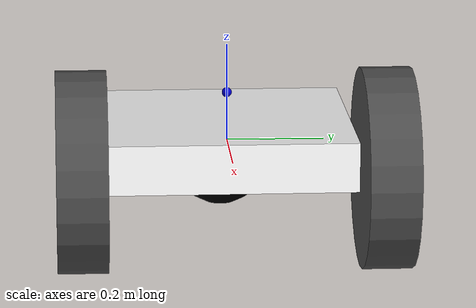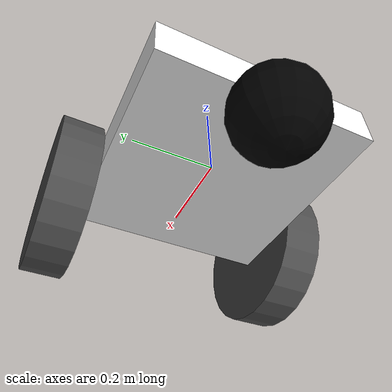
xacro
<?xml version="1.0"?>
<robot name="simple_robot_2" xmlns:xacro="http://ros.org/wiki/xacro">

<!-- Defining the colors used in this robot -->
  <material name="Black">
    <color rgba="0.0 0.0 0.0 1.0"/>
  </material>

  <material name="Red">
    <color rgba="0.8 0.0 0.0 1.0"/>
  </material>

  <material name="White">
    <color rgba="1.0 1.0 1.0 1.0"/>
  </material>

  <material name="Blue">
    <color rgba="0.0 0.0 0.8 1.0"/>
  </material>

  <!-- PROPERTY LIST -->
  <!--All units in m-kg-s-radians unit system -->
  <xacro:property name="M_PI" value="3.1415926535897931" />
  <xacro:property name="M_PI_2" value="1.570796327" />
  <xacro:property name="DEG_TO_RAD" value="0.017453293" />

  <xacro:property name="base_link_length" value="0.5" />
  <xacro:property name="base_link_width" value="0.5" />
  <xacro:property name="base_link_height" value="0.1" />
  <xacro:property name="base_link_mass" value="10" />

  <xacro:property name="wheel_radius" value="0.2" />
  <xacro:property name="wheel_thickness" value="0.1" />
  <xacro:property name="wheel_mass" value="2.5" />
  <xacro:property name="wheel_x_ratio" value="1" />

  <xacro:property name="caster_radius" value="0.1" />
  <xacro:property name="caster_mass" value="0.5" />
  <xacro:property name="caster_x_ratio" value="1" />

  <xacro:property name="laser_link_radius" value="0.01" />
  <xacro:property name="laser_link_mass" value="0.05" />
  <xacro:property name="laser_link_y" value="0.05" />

  <!-- Macro for calculating inertia of cylinder -->
  <xacro:macro name="cylinder_inertia" params="m r t">
    <inertia  ixx="${m*(3*r*r+t*t)/12}" ixy = "0" ixz = "0"
              iyy="${m*(3*r*r+t*t)/12}" iyz = "0"
              izz="${m*r*r/2}" />
  </xacro:macro>

  <xacro:macro name="cuboid_inertia" params="m l w h">
    <inertia  ixx="${m*(w*w+h*h)/12}" ixy = "0" ixz = "0"
              iyy="${m*(l*l+h*h)/12}" iyz = "0"
              izz="${m*(l*l+w*w)/12}" />
  </xacro:macro>

  <xacro:macro name="sphere_inertia" params="m r">
    <inertia  ixx="${2*m*r*r/5}" ixy = "0" ixz = "0"
              iyy="${2*m*r*r/5}" iyz = "0"
              izz="${2*m*r*r/5}" />
  </xacro:macro>

 <link name="base_link">
    <inertial>
      <mass value="${base_link_mass}"/>
      <origin xyz="0 0 0"/>
      <xacro:cuboid_inertia  m="${base_link_mass}" l="${base_link_length}" w="${base_link_width}" h="${base_link_height}" />
    </inertial>
    <visual>
      <origin rpy="0 0 0" xyz="0 0 0"/>
      <geometry>
        <box size="${base_link_length} ${base_link_width} ${base_link_height}"/>
      </geometry>
      <material name="White"/>
    </visual>
    <collision>
      <origin rpy="0 0 0 " xyz="0 0 0"/>
      <geometry>
        <box size="${base_link_length} ${base_link_width} ${base_link_height}"/>
      </geometry>
    </collision>
  </link>

  <link name="right_wheel_link">
    <visual>
      <origin rpy="1.57079632679 0  0 " xyz="0 0 0"/>
      <geometry>
        <cylinder length="${wheel_thickness}" radius="${wheel_radius}"/>
      </geometry>
      <material name="DarkGray"/>
    </visual>
    <collision>
      <origin rpy="1.57079632679 0 0 " xyz="0 0 0"/>
      <geometry>
        <cylinder length="${wheel_thickness}" radius="${wheel_radius}"/>
      </geometry>
    </collision>
    <inertial>
      <mass value="2.5"/>
      <origin xyz="0 0 0"/>
      <xacro:cylinder_inertia  m="${wheel_mass}" r="${wheel_radius}" t="${wheel_thickness}" />
    </inertial>
  </link>
  <joint name="right_wheel_joint" type="continuous">
    <parent link="base_link"/>
    <child link="right_wheel_link"/>
    <origin rpy="0 0 0" xyz="${wheel_x_ratio*base_link_length/2} ${base_link_width/2+wheel_thickness/2} 0.0"/>
    <axis rpy="0  0" xyz="0 1 0"/>
    <limit effort="100" velocity="100"/>
    <joint_properties damping="0.0" friction="0.0"/>
  </joint>

  <link name="left_wheel_link">
    <visual>
      <origin rpy="1.57079632679 0  0 " xyz="0 0 0"/>
      <geometry>
        <cylinder length="${wheel_thickness}" radius="${wheel_radius}"/>
      </geometry>
      <material name="DarkGray"/>
    </visual>
    <collision>
      <origin rpy="1.57079632679 0 0 " xyz="0 0 0"/>
      <geometry>
        <cylinder length="${wheel_thickness}" radius="${wheel_radius}"/>
      </geometry>
    </collision>
    <inertial>
      <mass value="2.5"/>
      <origin xyz="0 0 0"/>
      <xacro:cylinder_inertia  m="${wheel_mass}" r="${wheel_radius}" t="${wheel_thickness}" />
    </inertial>
  </link>
  <joint name="left_wheel_joint" type="continuous">
    <parent link="base_link"/>
    <child link="left_wheel_link"/>
    <origin rpy="0 0 0" xyz="${wheel_x_ratio*base_link_length/2} ${-(base_link_width/2+wheel_thickness/2)} 0.0"/>
    <axis rpy="0  0" xyz="0 1 0"/>
    <limit effort="100" velocity="100"/>
    <joint_properties damping="0.0" friction="0.0"/>
  </joint>

  <link name="caster_link">
    <visual>
      <origin rpy="0 0 0" xyz="0 0.0 0"/>
      <geometry>
        <sphere radius="${caster_radius}"/>
      </geometry>
      <material name="Black"/>
    </visual>
    <collision>
      <geometry>
        <sphere radius="${caster_radius}"/>
      </geometry>
      <origin rpy="0 0 0" xyz="0 0.0 0"/>
    </collision>
    <inertial>
      <mass value="${caster_mass}"/>
      <origin xyz="0 0 0"/>
      <xacro:sphere_inertia  m="${caster_mass}" r="${caster_radius}" />
    </inertial>
  </link>
  <joint name="caster_joint" type="fixed">
    <parent link="base_link"/>
    <child link="caster_link"/>
    <origin rpy="0 0 0" xyz="${-(caster_x_ratio*base_link_length/2)} 0.0 ${-(caster_radius)}"/>
  </joint>

  <!-- SENSORS -->
  <link name="laser_link">
    <visual>
      <origin rpy="0 0 0" xyz="0 0 0"/>
      <geometry>
        <sphere radius="${laser_link_radius}"/>
      </geometry>
      <material name="Blue"/>
    </visual>
  </link>
  <joint name="laser_link_joint" type="fixed">
    <origin rpy="0 0 0" xyz="0.0 0.0 ${laser_link_y+base_link_height/2}"/>
    <parent link="base_link"/>
    <child link="laser_link"/>
  </joint>

</robot>
